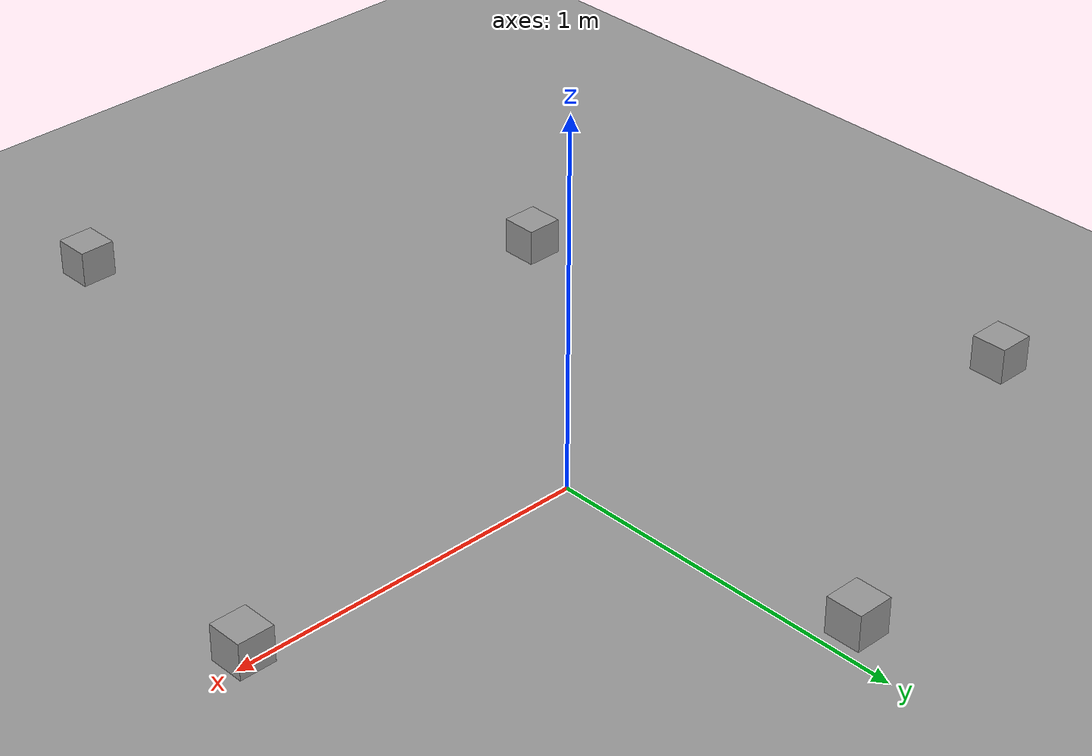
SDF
<sdf version="1.4">
 <world name="default">
  <light name="sun" type="directional">
   <pose>0 0 10 0 -0 0</pose>
   <diffuse>0.8 0.8 0.8 1</diffuse>
   <specular>0.2 0.2 0.2 1</specular>
   <attenuation>
    <range>1000</range>
    <constant>0.9</constant>
    <linear>0.01</linear>
    <quadratic>0.001</quadratic>
   </attenuation>
   <direction>0.5 0.1 -0.9</direction>
  </light>
  <scene><ambient>0.4 0.4 0.4 1</ambient><background>0.7 0.7 0.7 1</background><shadows>1</shadows></scene>
  <physics type="ode">
   <max_step_size>0.01</max_step_size>
   <real_time_factor>1</real_time_factor>
   <real_time_update_rate>100</real_time_update_rate>
   <gravity>0 0 -9.8</gravity>
  </physics>
  <model name="ground_plane_0">
   <static>1</static>
   <link name="link">
    <collision name="collision">
     <geometry><plane><normal>0 0 1</normal><size>100 100</size></plane></geometry>
     <surface><friction><ode><mu>100</mu><mu2>50</mu2></ode></friction></surface>
    </collision>
    <visual name="visual">
     <cast_shadows>0</cast_shadows>
     <geometry><plane><normal>0 0 1</normal><size>100 100</size></plane></geometry>
     <material>
      <script><uri>file://media/materials/scripts/gazebo.material</uri><name>Gazebo/Grey</name></script>
     </material>
    </visual>
    <velocity_decay><linear>0</linear><angular>0</angular></velocity_decay>
   </link>
   <pose>0.497681 0 0 0 -0 0</pose>
  </model>
  <spherical_coordinates>
   <surface_model>EARTH_WGS84</surface_model>
   <latitude_deg>0</latitude_deg>
   <longitude_deg>0</longitude_deg>
   <elevation>0</elevation>
   <heading_deg>0</heading_deg>
  </spherical_coordinates>
  <model name="unit_box_1">
   <pose>0.962042 -0.019632 0.049125 6.5e-05 2.9e-05 -0.000249</pose>
   <link name="link">
    <inertial>
     <mass>1</mass>
     <inertia><ixx>1</ixx><ixy>0</ixy><ixz>0</ixz><iyy>1</iyy><iyz>0</iyz><izz>1</izz></inertia>
    </inertial>
    <collision name="collision"><geometry><box><size>0.1 0.1 0.1</size></box></geometry></collision>
    <visual name="visual">
     <geometry><box><size>0.1 0.1 0.1</size></box></geometry>
     <material>
      <script><uri>file://media/materials/scripts/gazebo.material</uri><name>Gazebo/Grey</name></script>
     </material>
    </visual>
    <velocity_decay><linear>0</linear><angular>0</angular></velocity_decay>
   </link>
   <static>0</static>
  </model>
  <model name="unit_box_2">
   <pose>-0.08388 0.833659 0.049125 6.5e-05 2.9e-05 0.000103</pose>
   <link name="link">
    <inertial>
     <mass>1</mass>
     <inertia><ixx>1</ixx><ixy>0</ixy><ixz>0</ixz><iyy>1</iyy><iyz>0</iyz><izz>1</izz></inertia>
    </inertial>
    <collision name="collision"><geometry><box><size>0.1 0.1 0.1</size></box></geometry></collision>
    <visual name="visual">
     <geometry><box><size>0.1 0.1 0.1</size></box></geometry>
     <material>
      <script><uri>file://media/materials/scripts/gazebo.material</uri><name>Gazebo/Grey</name></script>
     </material>
    </visual>
    <velocity_decay><linear>0</linear><angular>0</angular></velocity_decay>
   </link>
   <static>0</static>
  </model>
  <model name="unit_box_3">
   <pose>0.237868 -1.59996 0.049125 6.5e-05 2.9e-05 -0.000166</pose>
   <link name="link">
    <inertial>
     <mass>1</mass>
     <inertia><ixx>1</ixx><ixy>0</ixy><ixz>0</ixz><iyy>1</iyy><iyz>0</iyz><izz>1</izz></inertia>
    </inertial>
    <collision name="collision"><geometry><box><size>0.1 0.1 0.1</size></box></geometry></collision>
    <visual name="visual">
     <geometry><box><size>0.1 0.1 0.1</size></box></geometry>
     <material>
      <script><uri>file://media/materials/scripts/gazebo.material</uri><name>Gazebo/Grey</name></script>
     </material>
    </visual>
    <velocity_decay><linear>0</linear><angular>0</angular></velocity_decay>
   </link>
   <static>0</static>
  </model>
  <model name="unit_box_4">
   <pose>-0.704644 -0.868091 0.049125 -6.5e-05 2.9e-05 -3.3e-05</pose>
   <link name="link">
    <inertial>
     <mass>1</mass>
     <inertia><ixx>1</ixx><ixy>0</ixy><ixz>0</ixz><iyy>1</iyy><iyz>0</iyz><izz>1</izz></inertia>
    </inertial>
    <collision name="collision"><geometry><box><size>0.1 0.1 0.1</size></box></geometry></collision>
    <visual name="visual">
     <geometry><box><size>0.1 0.1 0.1</size></box></geometry>
     <material>
      <script><uri>file://media/materials/scripts/gazebo.material</uri><name>Gazebo/Grey</name></script>
     </material>
    </visual>
    <velocity_decay><linear>0</linear><angular>0</angular></velocity_decay>
   </link>
   <static>0</static>
  </model>
  <model name="unit_box_5">
   <pose>-1.1601 0.371921 0.049125 6.5e-05 2.9e-05 1.7e-05</pose>
   <link name="link">
    <inertial>
     <mass>1</mass>
     <inertia><ixx>1</ixx><ixy>0</ixy><ixz>0</ixz><iyy>1</iyy><iyz>0</iyz><izz>1</izz></inertia>
    </inertial>
    <collision name="collision"><geometry><box><size>0.1 0.1 0.1</size></box></geometry></collision>
    <visual name="visual">
     <geometry><box><size>0.1 0.1 0.1</size></box></geometry>
     <material>
      <script><uri>file://media/materials/scripts/gazebo.material</uri><name>Gazebo/Grey</name></script>
     </material>
    </visual>
    <velocity_decay><linear>0</linear><angular>0</angular></velocity_decay>
   </link>
   <static>0</static>
  </model>
 </world>
</sdf>
